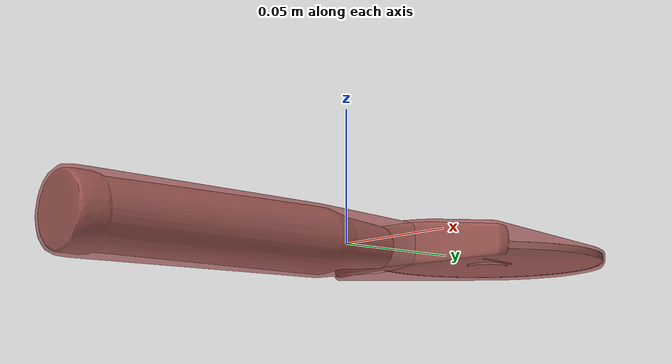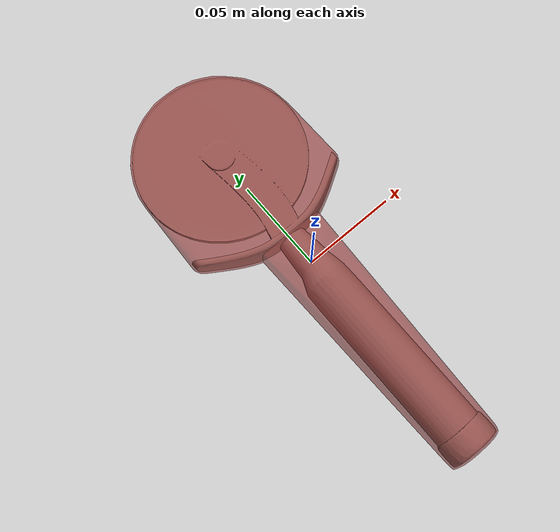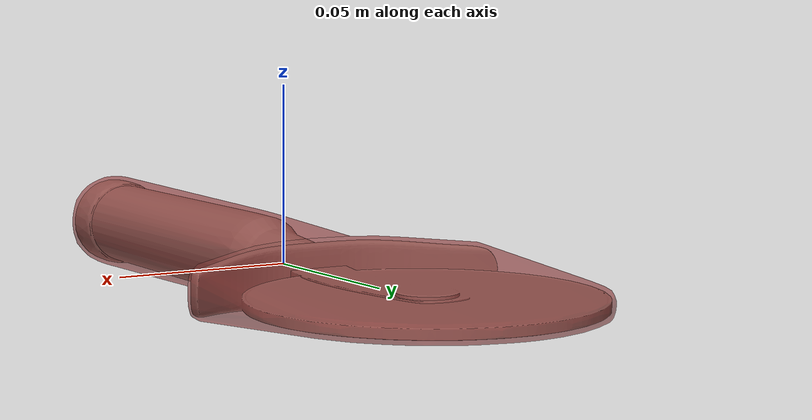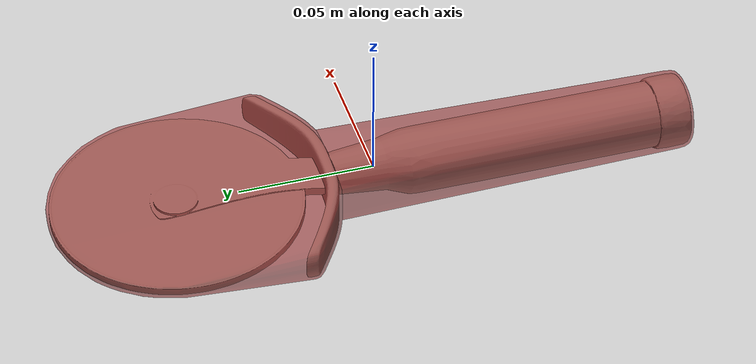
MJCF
<mujoco model="model">
  <option timestep="0.002" gravity="0.0 0.0 -9.81"/>
  <compiler angle="radian"/>
  <asset>
    <mesh file="visual/PizzaCutter003.obj" name="PizzaCutter003_vis"/>
    <mesh file="visual/Prop.obj" name="PizzaCutter003_Prop_vis"/>
    <texture file="visual/T_BC001.png" name="PizzaCutter003_material" type="2d"/>
    <material name="PizzaCutter003_material" rgba="1 1 1 1.0" texture="PizzaCutter003_material" shininess="0.141421377658844" specular="0.3103448502657381"/>
    <texture file="visual/T_BC001.png" name="PizzaCutter003_Prop_material" type="2d"/>
    <material name="PizzaCutter003_Prop_material" rgba="1 1 1 1.0" texture="PizzaCutter003_Prop_material" shininess="1" specular="1"/>
    <mesh file="collision/collision_mesh_collision_0.obj" name="PizzaCutter003_collision_mesh_0"/>
    <mesh file="collision/collision_mesh_collision_1.obj" name="PizzaCutter003_collision_mesh_1"/>
  </asset>
  <default>
    <default class="visual">
      <geom conaffinity="0" contype="0" group="1" type="mesh"/>
    </default>
    <default class="collision">
      <geom group="0" rgba="0.5 0 0 0.5" density="1.0" solref="0.004 1" solimp="0.998 0.998 0.001"/>
    </default>
    <default class="spawn">
      <geom group="0" rgba="1 1 1 0.5" contype="0" conaffinity="0"/>
      <site group="0" rgba="1 1 1 0.5"/>
    </default>
    <default class="region">
      <geom group="1" conaffinity="0" contype="0" rgba="0 1 0 0" mass="0"/>
    </default>
  </default>
  <worldbody>
    <body>
      <body name="object">
        <geom mesh="PizzaCutter003_vis" type="mesh" solimp="0.998 0.998 0.001" solref="0.001 1" friction="0.95 0.3 0.1" class="visual" material="PizzaCutter003_material"/>
        <body name="PizzaCutter003_Prop">
          <geom mesh="PizzaCutter003_Prop_vis" type="mesh" solimp="0.998 0.998 0.001" solref="0.001 1" friction="0.95 0.3 0.1" class="visual" material="PizzaCutter003_Prop_material"/>
        </body>
        <geom class="region" name="reg_bbox" type="box" pos="-8.760000000000018e-06 -0.00023288000000000475 1.9249999999998435e-06" size="0.0471718 0.11889925 0.014624385"/>
        <geom mesh="PizzaCutter003_collision_mesh_0" type="mesh" class="collision"/>
        <geom mesh="PizzaCutter003_collision_mesh_1" type="mesh" class="collision"/>
      </body>
    </body>
  </worldbody>
  <actuator/>
</mujoco>
